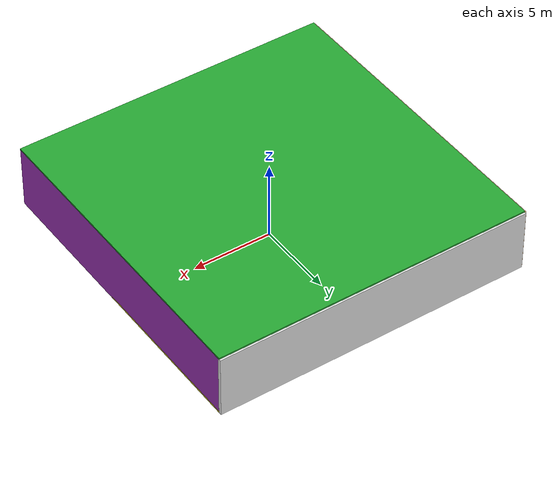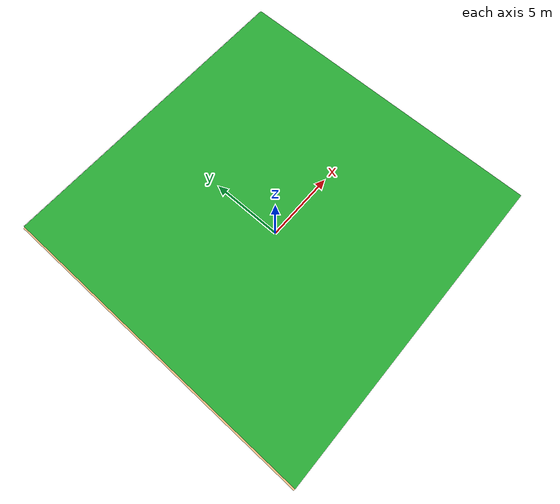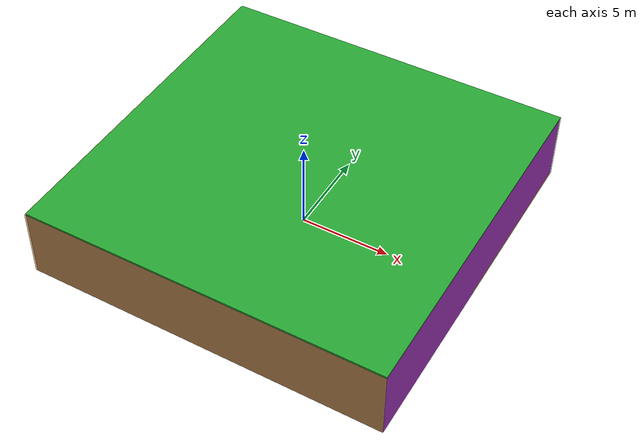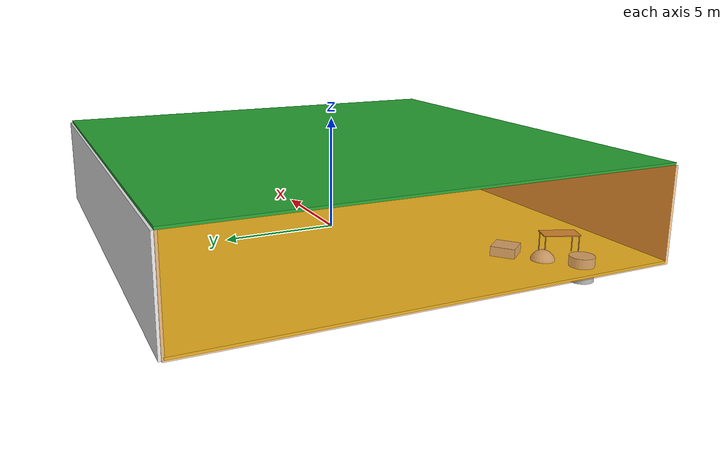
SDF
<sdf version="1.4">
 <world name="default">
  <physics type="ode">
   <max_step_size>0.001</max_step_size>
   <real_time_factor>1</real_time_factor>
   <real_time_update_rate>1000</real_time_update_rate>
   <gravity>0 0 -9.8</gravity>
  </physics>
  <scene><ambient>0.4 0.4 0.4 1</ambient><background>0.7 0.7 0.7 1</background><shadows>1</shadows></scene>
  <model name="Surrounding">
   <static>1</static>
   <link name="Ceiling">
    <collision name="Ceiling_Collision"><geometry><box><size>20 20 0.1</size></box></geometry></collision>
    <visual name="Ceiling_Visual">
     <geometry><box><size>20 20 0.1</size></box></geometry>
     <material>
      <script><uri>file://media/materials/scripts/gazebo.material</uri><name>Gazebo/GreenGlow</name></script>
     </material>
    </visual>
    <pose>0 0 4.05 0 0 0</pose>
   </link>
   <link name="Wall_South">
    <collision name="Wall_South_Collision">
     <geometry><box><size>20 0 4</size></box></geometry>
     <pose>0 0 2 0 -0 0</pose>
    </collision>
    <visual name="Wall_South_Visual">
     <pose>0 0 2 0 -0 0</pose>
     <geometry><box><size>20 0 4</size></box></geometry>
     <material>
      <script><uri>file://media/materials/scripts/gazebo.material</uri><name>Gazebo/Wood</name></script>
     </material>
    </visual>
    <velocity_decay><linear>0</linear><angular>0</angular></velocity_decay>
    <pose>0 -10 0 0 -0 0</pose>
   </link>
   <link name="Wall_East">
    <collision name="Wall_21_Collision">
     <geometry><box><size>20 0 4</size></box></geometry>
     <pose>0 0 2 0 -0 0</pose>
    </collision>
    <visual name="Wall_21_Visual">
     <pose>0 0 2 0 -0 0</pose>
     <geometry><box><size>20 0 4</size></box></geometry>
     <material>
      <script><uri>file://media/materials/scripts/gazebo.material</uri><name>Gazebo/PurpleGlow</name></script>
     </material>
    </visual>
    <velocity_decay><linear>0</linear><angular>0</angular></velocity_decay>
    <pose>10 0 0 0 -0 1.5708</pose>
   </link>
   <link name="Wall_North">
    <collision name="Wall_22_Collision">
     <geometry><box><size>20 0.2 4</size></box></geometry>
     <pose>0 0 2 0 -0 0</pose>
    </collision>
    <visual name="Wall_22_Visual">
     <pose>0 0 2 0 -0 0</pose>
     <geometry><box><size>20 0.2 4</size></box></geometry>
     <material>
      <script><uri>file://media/materials/scripts/gazebo.material</uri><name>Gazebo/White</name></script>
     </material>
    </visual>
    <velocity_decay><linear>0</linear><angular>0</angular></velocity_decay>
    <pose>0 10 0 0 -0 0</pose>
   </link>
   <link name="Wall_West">
    <collision name="Wall_23_Collision">
     <geometry><box><size>20 0.2 4</size></box></geometry>
     <pose>0 0 2 0 -0 0</pose>
    </collision>
    <visual name="Wall_23_Visual">
     <pose>0 0 2 0 -0 0</pose>
     <geometry><box><size>20 0.2 4</size></box></geometry>
     <material>
      <script>
       <uri>file://media/materials/scripts/gazebo.material</uri>
       <name>Gazebo/OrangeTransparent</name>
      </script>
     </material>
    </visual>
    <velocity_decay><linear>0</linear><angular>0</angular></velocity_decay>
    <pose>-10 0 0 0 0 -1.5708</pose>
   </link>
   <link name="Ground_link">
    <collision name="collision">
     <pose>0 0 .05 0 -0 0</pose>
     <geometry><box><size>20 20 0.1</size></box></geometry>
    </collision>
    <visual name="visual">
     <pose>0 0 .05 0 -0 0</pose>
     <geometry><box><size>20 20 0.1</size></box></geometry>
     <material>
      <script><uri>file://media/materials/scripts/gazebo.material</uri><name>Gazebo/Yellow</name></script>
     </material>
    </visual>
   </link>
   <static>1</static>
  </model>
  <spherical_coordinates>
   <surface_model>EARTH_WGS84</surface_model>
   <latitude_deg>0</latitude_deg>
   <longitude_deg>0</longitude_deg>
   <elevation>0</elevation>
   <heading_deg>0</heading_deg>
  </spherical_coordinates>
  <light name="lightball_0" type="diffuse">
   <diffuse>0.8 0.8 0.8 1</diffuse>
   <specular>0.2 0.2 0.2 1</specular>
   <attenuation>
    <range>100</range>
    <constant>0.7</constant>
    <linear>0.01</linear>
    <quadratic>0.001</quadratic>
   </attenuation>
   <direction>-0.5 0.1 -0.9</direction>
   <pose>-0.511548158643 4.28449448638 1.77166257224 0 0 0</pose>
  </light>
  <light name="lightball_1" type="diffuse">
   <diffuse>0.8 0.8 0.8 1</diffuse>
   <specular>0.2 0.2 0.2 1</specular>
   <attenuation>
    <range>100</range>
    <constant>0.7</constant>
    <linear>0.01</linear>
    <quadratic>0.001</quadratic>
   </attenuation>
   <direction>-0.5 0.1 -0.9</direction>
   <pose>-6.71486733401 6.19954214682 1.44459610458 0 0 0</pose>
  </light>
  <light name="lightball_2" type="diffuse">
   <diffuse>0.8 0.8 0.8 1</diffuse>
   <specular>0.2 0.2 0.2 1</specular>
   <attenuation>
    <range>100</range>
    <constant>0.7</constant>
    <linear>0.01</linear>
    <quadratic>0.001</quadratic>
   </attenuation>
   <direction>-0.5 0.1 -0.9</direction>
   <pose>3.22028608147 -5.22564403887 0.97202623469 0 0 0</pose>
  </light>
  <light name="lightball_3" type="diffuse">
   <diffuse>0.8 0.8 0.8 1</diffuse>
   <specular>0.2 0.2 0.2 1</specular>
   <attenuation>
    <range>100</range>
    <constant>0.7</constant>
    <linear>0.01</linear>
    <quadratic>0.001</quadratic>
   </attenuation>
   <direction>-0.5 0.1 -0.9</direction>
   <pose>0.0153247299147 -4.75397823867 1.10418820585 0 0 0</pose>
  </light>
  <include><uri>model://table</uri><pose>-7.61428667247 -6.65032688095 0 0 0 1.18227630927</pose></include>
  <include><uri>model://textured_shapes</uri><pose>-7.84626748 -5.6677771707 0 0 0 2.2459423956</pose></include>
 </world>
</sdf>

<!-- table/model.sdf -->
<sdf version="1.5">
  <model name="table">
    <static>true</static>
    <link name="link">
      <collision name="surface">
        <pose>0 0 1.0 0 0 0</pose>
        <geometry>
          <box>
            <size>1.5 0.8 0.03</size>
          </box>
        </geometry>
        <surface>
          <friction>
            <ode>
              <mu>0.6</mu>
              <mu2>0.6</mu2>
            </ode>
          </friction>
        </surface>
      </collision>
      <visual name="visual1">
        <pose>0 0 1.0 0 0 0</pose>
        <geometry>
          <box>
            <size>1.5 0.8 0.03</size>
          </box>
        </geometry>
        <material>
          <script>
            <uri>model://media/materials/scripts/gazebo.material</uri>
            <name>Gazebo/Wood</name>
          </script>
        </material>
      </visual>
      <collision name="front_left_leg">
        <pose>0.68 0.38 0.5 0 0 0</pose>
        <geometry>
          <cylinder>
            <radius>0.02</radius>
            <length>1.0</length>
          </cylinder>
        </geometry>
      </collision>
      <visual name="front_left_leg">
        <pose>0.68 0.38 0.5 0 0 0</pose>
        <geometry>
          <cylinder>
            <radius>0.02</radius>
            <length>1.0</length>
          </cylinder>
        </geometry>
        <material>
          <script>
            <uri>model://media/materials/scripts/gazebo.material</uri>
            <name>Gazebo/Grey</name>
          </script>
        </material>
      </visual>
      <collision name="front_right_leg">
        <pose>0.68 -0.38 0.5 0 0 0</pose>
        <geometry>
          <cylinder>
            <radius>0.02</radius>
            <length>1.0</length>
          </cylinder>
        </geometry>
      </collision>
      <visual name="front_right_leg">
        <pose>0.68 -0.38 0.5 0 0 0</pose>
        <geometry>
          <cylinder>
            <radius>0.02</radius>
            <length>1.0</length>
          </cylinder>
        </geometry>
        <material>
          <script>
            <uri>model://media/materials/scripts/gazebo.material</uri>
            <name>Gazebo/Grey</name>
          </script>
        </material>
      </visual>
      <collision name="back_right_leg">
        <pose>-0.68 -0.38 0.5 0 0 0</pose>
        <geometry>
          <cylinder>
            <radius>0.02</radius>
            <length>1.0</length>
          </cylinder>
        </geometry>
      </collision>
      <visual name="back_right_leg">
        <pose>-0.68 -0.38 0.5 0 0 0</pose>
        <geometry>
          <cylinder>
            <radius>0.02</radius>
            <length>1.0</length>
          </cylinder>
        </geometry>
        <material>
          <script>
            <uri>model://media/materials/scripts/gazebo.material</uri>
            <name>Gazebo/Grey</name>
          </script>
        </material>
      </visual>
      <collision name="back_left_leg">
        <pose>-0.68 0.38 0.5 0 0 0</pose>
        <geometry>
          <cylinder>
            <radius>0.02</radius>
            <length>1.0</length>
          </cylinder>
        </geometry>
      </collision>
      <visual name="back_left_leg">
        <pose>-0.68 0.38 0.5 0 0 0</pose>
        <geometry>
          <cylinder>
            <radius>0.02</radius>
            <length>1.0</length>
          </cylinder>
        </geometry>
        <material>
          <script>
            <uri>model://media/materials/scripts/gazebo.material</uri>
            <name>Gazebo/Grey</name>
          </script>
        </material>
      </visual>
    </link>
  </model>
</sdf>

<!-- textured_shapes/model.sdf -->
<sdf version="1.6">
  <model name="textured_shapes">
    <pose>0 0 0.5 0 0 0</pose>
    <link name="box">
      <pose>0 -1.5 0 0 0 0</pose>
      <collision name="collision">
        <geometry>
          <box>
            <size>1 1 1</size>
          </box>
        </geometry>
      </collision>
      <visual name="visual">
        <geometry>
          <box>
            <size>1 1 1</size>
          </box>
        </geometry>
        <material>
          <script>
            <uri>model://../model_source/models/textured_shapes/materials/scripts</uri>
            <uri>model://../model_source/models/textured_shapes/materials/textures</uri>
            <name>TexturedShape/Squares</name>
          </script>
        </material>
      </visual>
    </link>
    <link name="sphere">
      <collision name="collision">
        <geometry>
          <sphere>
            <radius>0.5</radius>
          </sphere>
        </geometry>
      </collision>
      <visual name="visual">
        <geometry>
          <sphere>
            <radius>0.5</radius>
          </sphere>
        </geometry>
        <material>
          <script>
            <uri>model://../model_source/models/textured_shapes/materials/scripts</uri>
            <uri>model://../model_source/models/textured_shapes/materials/textures</uri>
            <name>TexturedShape/Squares</name>
          </script>
        </material>
      </visual>
    </link>
    <link name="cylinder">
      <pose>0 1.5 0 0 0 0</pose>
      <collision name="collision">
        <geometry>
          <cylinder>
            <radius>0.5</radius>
            <length>1</length>
          </cylinder>
        </geometry>
      </collision>
      <visual name="visual">
        <geometry>
          <cylinder>
            <radius>0.5</radius>
            <length>1</length>
          </cylinder>
        </geometry>
        <material>
          <script>
            <uri>model://../model_source/models/textured_shapes/materials/scripts</uri>
            <uri>model://../model_source/models/textured_shapes/materials/textures</uri>
            <name>TexturedShape/Squares</name>
          </script>
        </material>
      </visual>
    </link>
  </model>
</sdf>
